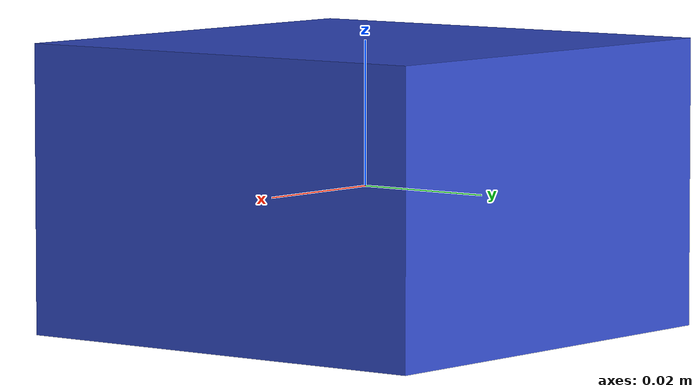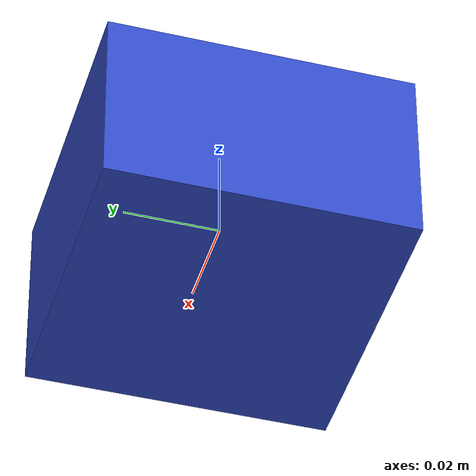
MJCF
<mujoco model="blue_block">
  <asset>
    <!-- 这里使用了对应的蓝色系数值：R=0.2, G=0.3, B=0.8 -->
    <!-- 同样不需要 texture, builtin, width, height -->
    <material name="mat_blue" rgba="0.2 0.3 0.8 1" shininess="0.3" specular="0.3"/>
  </asset>

  <worldbody>
    <body>
      <body name="object">
        <!-- 物理碰撞几何体 -->
        <geom name="blue_geom" type="box" size="0.032 0.032 0.02" material="mat_blue"
              density="1000" friction="0.1 0.005 0.0001" solref="0.002 1" solimp="0.99 0.99 0.001"
              condim="4" group="1"/>
        <!-- 视觉显示几何体 -->
        <geom name="blue_vis" type="box" size="0.032 0.032 0.02" material="mat_blue"
              contype="0" conaffinity="0" group="0"/>

        <!-- 这里的 site 位置和大小必须和红色方块完全一样，确保抓取逻辑通用 -->
        <site name="bottom_site" pos="0 0 -0.02" size="0.002" rgba="0 0 0 0"/>
        <site name="top_site" pos="0 0 0.02" size="0.002" rgba="0 0 0 0"/>
        <site name="horizontal_radius_site" pos="0.032 0 0" size="0.002" rgba="0 0 0 0"/>
      </body>
    </body>
  </worldbody>
</mujoco>
